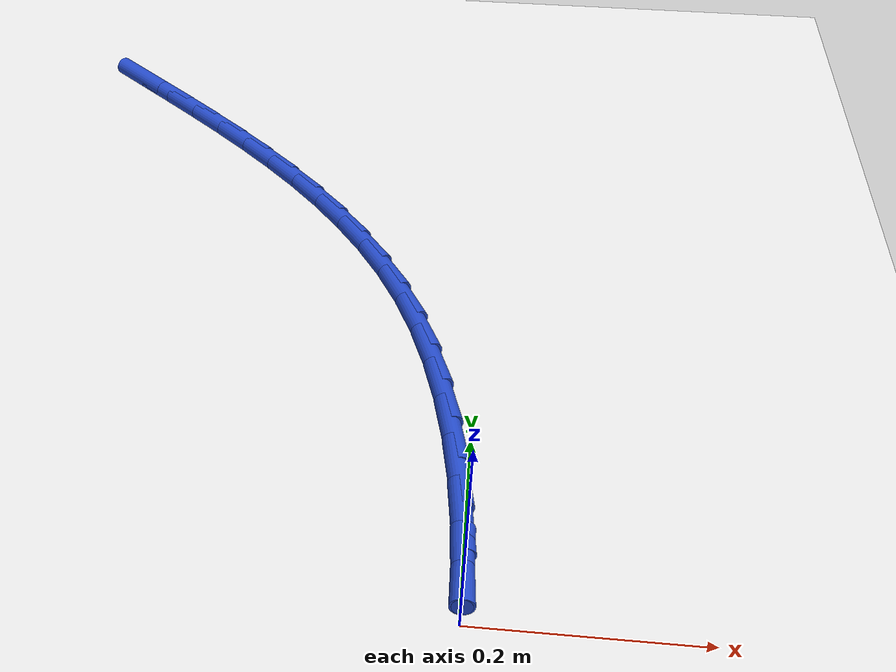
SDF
<sdf version="1.6">
 <world name="default">
  <model name="ground_plane">
   <static>1</static>
   <link name="link">
    <collision name="collision">
     <geometry><plane><normal>0 0 1</normal><size>100 100</size></plane></geometry>
     <surface><friction><ode><mu>100</mu><mu2>50</mu2></ode></friction></surface>
    </collision>
    <visual name="visual">
     <cast_shadows>0</cast_shadows>
     <geometry><plane><normal>0 0 1</normal><size>100 100</size></plane></geometry>
     <material>
      <script><uri>file://media/materials/scripts/gazebo.material</uri><name>Gazebo/WhiteGlow</name></script>
     </material>
    </visual>
   </link>
  </model>
  <model name="line">
   <link name="link_1">
    <pose>-0.0008361861503276286 0.05020212846412501 0.01 0 1.57 -1.5087919098441163</pose>
    <collision name="collision">
     <geometry><cylinder><radius>0.01</radius><length>0.08</length></cylinder></geometry>
    </collision>
    <visual name="visual">
     <material>
      <script><name>Gazebo/Blue</name><uri>file://media/materials/scripts/gazebo.material</uri></script>
     </material>
     <geometry><cylinder><radius>0.01</radius><length>0.08</length></cylinder></geometry>
    </visual>
   </link>
   <link name="link_2">
    <pose>-0.003951071527079261 0.10037424088931637 0.01 0 1.57 -1.4608389594381468</pose>
    <collision name="collision">
     <geometry><cylinder><radius>0.01</radius><length>0.08</length></cylinder></geometry>
    </collision>
    <visual name="visual">
     <material>
      <script><name>Gazebo/Blue</name><uri>file://media/materials/scripts/gazebo.material</uri></script>
     </material>
     <geometry><cylinder><radius>0.01</radius><length>0.08</length></cylinder></geometry>
    </visual>
   </link>
   <link name="link_3">
    <pose>-0.009453025080023244 0.15020957049174394 0.01 0 1.57 -1.4096306189398473</pose>
    <collision name="collision">
     <geometry><cylinder><radius>0.01</radius><length>0.08</length></cylinder></geometry>
    </collision>
    <visual name="visual">
     <material>
      <script><name>Gazebo/Blue</name><uri>file://media/materials/scripts/gazebo.material</uri></script>
     </material>
     <geometry><cylinder><radius>0.01</radius><length>0.08</length></cylinder></geometry>
    </visual>
   </link>
   <link name="link_4">
    <pose>-0.017450415758927893 0.19940135048757762 0.01 0 1.57 -1.354481820900038</pose>
    <collision name="collision">
     <geometry><cylinder><radius>0.01</radius><length>0.08</length></cylinder></geometry>
    </collision>
    <visual name="visual">
     <material>
      <script><name>Gazebo/Blue</name><uri>file://media/materials/scripts/gazebo.material</uri></script>
     </material>
     <geometry><cylinder><radius>0.01</radius><length>0.08</length></cylinder></geometry>
    </visual>
   </link>
   <link name="link_5">
    <pose>-0.028051612513561565 0.2476428140929872 0.01 0 1.57 -1.2946770312788471</pose>
    <collision name="collision">
     <geometry><cylinder><radius>0.01</radius><length>0.08</length></cylinder></geometry>
    </collision>
    <visual name="visual">
     <material>
      <script><name>Gazebo/Blue</name><uri>file://media/materials/scripts/gazebo.material</uri></script>
     </material>
     <geometry><cylinder><radius>0.01</radius><length>0.08</length></cylinder></geometry>
    </visual>
   </link>
   <link name="link_6">
    <pose>-0.04136498429369261 0.29462719452414265 0.01 0 1.57 -1.2294859005522079</pose>
    <collision name="collision">
     <geometry><cylinder><radius>0.01</radius><length>0.08</length></cylinder></geometry>
    </collision>
    <visual name="visual">
     <material>
      <script><name>Gazebo/Blue</name><uri>file://media/materials/scripts/gazebo.material</uri></script>
     </material>
     <geometry><cylinder><radius>0.01</radius><length>0.08</length></cylinder></geometry>
    </visual>
   </link>
   <link name="link_7">
    <pose>-0.05749890004908932 0.34004772499721353 0.01 0 1.57 -1.1581981714654466</pose>
    <collision name="collision">
     <geometry><cylinder><radius>0.01</radius><length>0.08</length></cylinder></geometry>
    </collision>
    <visual name="visual">
     <material>
      <script><name>Gazebo/Blue</name><uri>file://media/materials/scripts/gazebo.material</uri></script>
     </material>
     <geometry><cylinder><radius>0.01</radius><length>0.08</length></cylinder></geometry>
    </visual>
   </link>
   <link name="link_8">
    <pose>-0.07656172813389683 0.3835976395973358 0.01 0 1.57 -1.082322276304888</pose>
    <collision name="collision">
     <geometry><cylinder><radius>0.01</radius><length>0.08</length></cylinder></geometry>
    </collision>
    <visual name="visual">
     <material>
      <script><name>Gazebo/Blue</name><uri>file://media/materials/scripts/gazebo.material</uri></script>
     </material>
     <geometry><cylinder><radius>0.01</radius><length>0.08</length></cylinder></geometry>
    </visual>
   </link>
   <link name="link_9">
    <pose>-0.09859789434226914 0.42506345939320184 0.01 0 1.57 -1.0101015547327135</pose>
    <collision name="collision">
     <geometry><cylinder><radius>0.01</radius><length>0.08</length></cylinder></geometry>
    </collision>
    <visual name="visual">
     <material>
      <script><name>Gazebo/Blue</name><uri>file://media/materials/scripts/gazebo.material</uri></script>
     </material>
     <geometry><cylinder><radius>0.01</radius><length>0.08</length></cylinder></geometry>
    </visual>
   </link>
   <link name="link_10">
    <pose>-0.12341201703831871 0.46458156494906105 0.01 0 1.57 -0.9444666118038991</pose>
    <collision name="collision">
     <geometry><cylinder><radius>0.01</radius><length>0.08</length></cylinder></geometry>
    </collision>
    <visual name="visual">
     <material>
      <script><name>Gazebo/Blue</name><uri>file://media/materials/scripts/gazebo.material</uri></script>
     </material>
     <geometry><cylinder><radius>0.01</radius><length>0.08</length></cylinder></geometry>
    </visual>
   </link>
   <link name="link_11">
    <pose>-0.15075250729138104 0.5023703386912153 0.01 0 1.57 -0.8861672792149091</pose>
    <collision name="collision">
     <geometry><cylinder><radius>0.01</radius><length>0.08</length></cylinder></geometry>
    </collision>
    <visual name="visual">
     <material>
      <script><name>Gazebo/Blue</name><uri>file://media/materials/scripts/gazebo.material</uri></script>
     </material>
     <geometry><cylinder><radius>0.01</radius><length>0.08</length></cylinder></geometry>
    </visual>
   </link>
   <link name="link_12">
    <pose>-0.1803677761707916 0.5386481630459661 0.01 0 1.57 -0.835590318260056</pose>
    <collision name="collision">
     <geometry><cylinder><radius>0.01</radius><length>0.08</length></cylinder></geometry>
    </collision>
    <visual name="visual">
     <material>
      <script><name>Gazebo/Blue</name><uri>file://media/materials/scripts/gazebo.material</uri></script>
     </material>
     <geometry><cylinder><radius>0.01</radius><length>0.08</length></cylinder></geometry>
    </visual>
   </link>
   <link name="link_13">
    <pose>-0.21200623474588573 0.5736334204396153 0.01 0 1.57 -0.792840169392454</pose>
    <collision name="collision">
     <geometry><cylinder><radius>0.01</radius><length>0.08</length></cylinder></geometry>
    </collision>
    <visual name="visual">
     <material>
      <script><name>Gazebo/Blue</name><uri>file://media/materials/scripts/gazebo.material</uri></script>
     </material>
     <geometry><cylinder><radius>0.01</radius><length>0.08</length></cylinder></geometry>
    </visual>
   </link>
   <link name="link_14">
    <pose>-0.24541629408599883 0.607544493298464 0.01 0 1.57 -0.7578286116759948</pose>
    <collision name="collision">
     <geometry><cylinder><radius>0.01</radius><length>0.08</length></cylinder></geometry>
    </collision>
    <visual name="visual">
     <material>
      <script><name>Gazebo/Blue</name><uri>file://media/materials/scripts/gazebo.material</uri></script>
     </material>
     <geometry><cylinder><radius>0.01</radius><length>0.08</length></cylinder></geometry>
    </visual>
   </link>
   <link name="link_15">
    <pose>-0.2803463652604664 0.6405997640488145 0.01 0 1.57 -0.7303555322253231</pose>
    <collision name="collision">
     <geometry><cylinder><radius>0.01</radius><length>0.08</length></cylinder></geometry>
    </collision>
    <visual name="visual">
     <material>
      <script><name>Gazebo/Blue</name><uri>file://media/materials/scripts/gazebo.material</uri></script>
     </material>
     <geometry><cylinder><radius>0.01</radius><length>0.08</length></cylinder></geometry>
    </visual>
   </link>
   <link name="link_16">
    <pose>-0.31654485933862386 0.6730176151169678 0.01 0 1.57 -0.7101726313405298</pose>
    <collision name="collision">
     <geometry><cylinder><radius>0.01</radius><length>0.08</length></cylinder></geometry>
    </collision>
    <visual name="visual">
     <material>
      <script><name>Gazebo/Blue</name><uri>file://media/materials/scripts/gazebo.material</uri></script>
     </material>
     <geometry><cylinder><radius>0.01</radius><length>0.08</length></cylinder></geometry>
    </visual>
   </link>
   <link name="link_17">
    <pose>-0.3537601873898068 0.7050164289292263 0.01 0 1.57 -0.6970286506961715</pose>
    <collision name="collision">
     <geometry><cylinder><radius>0.01</radius><length>0.08</length></cylinder></geometry>
    </collision>
    <visual name="visual">
     <material>
      <script><name>Gazebo/Blue</name><uri>file://media/materials/scripts/gazebo.material</uri></script>
     </material>
     <geometry><cylinder><radius>0.01</radius><length>0.08</length></cylinder></geometry>
    </visual>
   </link>
   <link name="link_18">
    <pose>-0.39174076048335027 0.736814587911891 0.01 0 1.57 -0.690698181460474</pose>
    <collision name="collision">
     <geometry><cylinder><radius>0.01</radius><length>0.08</length></cylinder></geometry>
    </collision>
    <visual name="visual">
     <material>
      <script><name>Gazebo/Blue</name><uri>file://media/materials/scripts/gazebo.material</uri></script>
     </material>
     <geometry><cylinder><radius>0.01</radius><length>0.08</length></cylinder></geometry>
    </visual>
   </link>
   <link name="link_19">
    <pose>-0.43023498968859014 0.7686304744912641 0.01 0 1.57 -0.6909971768165832</pose>
    <collision name="collision">
     <geometry><cylinder><radius>0.01</radius><length>0.08</length></cylinder></geometry>
    </collision>
    <visual name="visual">
     <material>
      <script><name>Gazebo/Blue</name><uri>file://media/materials/scripts/gazebo.material</uri></script>
     </material>
     <geometry><cylinder><radius>0.01</radius><length>0.08</length></cylinder></geometry>
    </visual>
   </link>
   <link name="link_161">
    <pose>-0.0008084532025719945 0.050236815496862826 0.01 0 1.57 -1.5547048724609565</pose>
    <collision name="collision">
     <geometry><cylinder><radius>0.01</radius><length>0.08</length></cylinder></geometry>
    </collision>
    <visual name="visual">
     <material>
      <script><name>Gazebo/Blue</name><uri>file://media/materials/scripts/gazebo.material</uri></script>
     </material>
     <geometry><cylinder><radius>0.01</radius><length>0.08</length></cylinder></geometry>
    </visual>
   </link>
  </model>
 </world>
</sdf>
